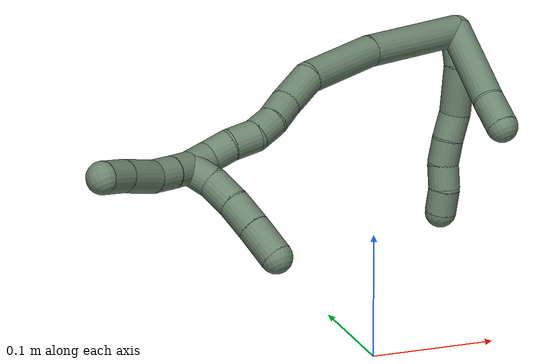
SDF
<sdf version="1.7">
 <world name="default">
  <model name="17">
   <static>0</static>
   <link name="17">
    <collision name="collision-cylinder-e_1_2_8">
     <pose>-0.002381 0.0047 -0.012234 -2.77479 -0.179731 0.904438</pose>
     <geometry><cylinder><radius>0.0125</radius><length>0.026641</length></cylinder></geometry>
     <surface>
      <friction><ode><mu>1.16</mu><mu2>1.16</mu2><slip1>0</slip1><slip2>0</slip2></ode></friction>
      <contact><ode><kp>1e+06</kp><kd>1</kd><max_vel>0</max_vel><min_depth>0.001</min_depth></ode></contact>
     </surface>
    </collision>
    <visual name="visual-cylinder-e_1_2_8">
     <pose>-0.002381 0.0047 -0.012234 -2.77479 -0.179731 0.904438</pose>
     <geometry><cylinder><radius>0.0125</radius><length>0.026641</length></cylinder></geometry>
     <material><ambient>0.415686 0.509804 0.423529 1</ambient></material>
    </visual>
    <collision name="collision-cylinder-e_2_8_9">
     <pose>-0.010558 0.022148 -0.039494 -2.43804 -0.286075 0.747848</pose>
     <geometry><cylinder><radius>0.0125</radius><length>0.041078</length></cylinder></geometry>
     <surface>
      <friction><ode><mu>1.16</mu><mu2>1.16</mu2><slip1>0</slip1><slip2>0</slip2></ode></friction>
      <contact><ode><kp>1e+06</kp><kd>1</kd><max_vel>0</max_vel><min_depth>0.001</min_depth></ode></contact>
     </surface>
    </collision>
    <visual name="visual-cylinder-e_2_8_9">
     <pose>-0.010558 0.022148 -0.039494 -2.43804 -0.286075 0.747848</pose>
     <geometry><cylinder><radius>0.0125</radius><length>0.041078</length></cylinder></geometry>
     <material><ambient>0.415686 0.509804 0.423529 1</ambient></material>
    </visual>
    <collision name="collision-cylinder-e_3_9_10">
     <pose>-0.021898 0.039674 -0.06255 -2.60481 -0.535426 1.56814</pose>
     <geometry><cylinder><radius>0.0125</radius><length>0.021731</length></cylinder></geometry>
     <surface>
      <friction><ode><mu>1.16</mu><mu2>1.16</mu2><slip1>0</slip1><slip2>0</slip2></ode></friction>
      <contact><ode><kp>1e+06</kp><kd>1</kd><max_vel>0</max_vel><min_depth>0.001</min_depth></ode></contact>
     </surface>
    </collision>
    <visual name="visual-cylinder-e_3_9_10">
     <pose>-0.021898 0.039674 -0.06255 -2.60481 -0.535426 1.56814</pose>
     <geometry><cylinder><radius>0.0125</radius><length>0.021731</length></cylinder></geometry>
     <material><ambient>0.415686 0.509804 0.423529 1</ambient></material>
    </visual>
    <collision name="collision-cylinder-e_4_10_11">
     <pose>-0.031674 0.049809 -0.078199 -2.52883 -0.426531 1.20059</pose>
     <geometry><cylinder><radius>0.0125</radius><length>0.020458</length></cylinder></geometry>
     <surface>
      <friction><ode><mu>1.16</mu><mu2>1.16</mu2><slip1>0</slip1><slip2>0</slip2></ode></friction>
      <contact><ode><kp>1e+06</kp><kd>1</kd><max_vel>0</max_vel><min_depth>0.001</min_depth></ode></contact>
     </surface>
    </collision>
    <visual name="visual-cylinder-e_4_10_11">
     <pose>-0.031674 0.049809 -0.078199 -2.52883 -0.426531 1.20059</pose>
     <geometry><cylinder><radius>0.0125</radius><length>0.020458</length></cylinder></geometry>
     <material><ambient>0.415686 0.509804 0.423529 1</ambient></material>
    </visual>
    <collision name="collision-cylinder-e_5_11_12">
     <pose>-0.038116 0.05953 -0.094571 -2.67902 -0.222199 0.884785</pose>
     <geometry><cylinder><radius>0.0125</radius><length>0.020058</length></cylinder></geometry>
     <surface>
      <friction><ode><mu>1.16</mu><mu2>1.16</mu2><slip1>0</slip1><slip2>0</slip2></ode></friction>
      <contact><ode><kp>1e+06</kp><kd>1</kd><max_vel>0</max_vel><min_depth>0.001</min_depth></ode></contact>
     </surface>
    </collision>
    <visual name="visual-cylinder-e_5_11_12">
     <pose>-0.038116 0.05953 -0.094571 -2.67902 -0.222199 0.884785</pose>
     <geometry><cylinder><radius>0.0125</radius><length>0.020058</length></cylinder></geometry>
     <material><ambient>0.415686 0.509804 0.423529 1</ambient></material>
    </visual>
    <collision name="collision-cylinder-e_6_12_6">
     <pose>-0.043845 0.069803 -0.110609 -2.46012 -0.359025 0.946087</pose>
     <geometry><cylinder><radius>0.0125</radius><length>0.020034</length></cylinder></geometry>
     <surface>
      <friction><ode><mu>1.16</mu><mu2>1.16</mu2><slip1>0</slip1><slip2>0</slip2></ode></friction>
      <contact><ode><kp>1e+06</kp><kd>1</kd><max_vel>0</max_vel><min_depth>0.001</min_depth></ode></contact>
     </surface>
    </collision>
    <visual name="visual-cylinder-e_6_12_6">
     <pose>-0.043845 0.069803 -0.110609 -2.46012 -0.359025 0.946087</pose>
     <geometry><cylinder><radius>0.0125</radius><length>0.020034</length></cylinder></geometry>
     <material><ambient>0.415686 0.509804 0.423529 1</ambient></material>
    </visual>
    <collision name="collision-cylinder-e_1_2_13">
     <pose>-0.003373 -0.015231 -0.033907 2.7194 -0.090485 -0.41642</pose>
     <geometry><cylinder><radius>0.0125</radius><length>0.074646</length></cylinder></geometry>
     <surface>
      <friction><ode><mu>1.16</mu><mu2>1.16</mu2><slip1>0</slip1><slip2>0</slip2></ode></friction>
      <contact><ode><kp>1e+06</kp><kd>1</kd><max_vel>0</max_vel><min_depth>0.001</min_depth></ode></contact>
     </surface>
    </collision>
    <visual name="visual-cylinder-e_1_2_13">
     <pose>-0.003373 -0.015231 -0.033907 2.7194 -0.090485 -0.41642</pose>
     <geometry><cylinder><radius>0.0125</radius><length>0.074646</length></cylinder></geometry>
     <material><ambient>0.415686 0.509804 0.423529 1</ambient></material>
    </visual>
    <collision name="collision-cylinder-e_2_13_5">
     <pose>-0.006874 -0.034056 -0.079969 2.85415 -0.010157 -0.070154</pose>
     <geometry><cylinder><radius>0.0125</radius><length>0.025354</length></cylinder></geometry>
     <surface>
      <friction><ode><mu>1.16</mu><mu2>1.16</mu2><slip1>0</slip1><slip2>0</slip2></ode></friction>
      <contact><ode><kp>1e+06</kp><kd>1</kd><max_vel>0</max_vel><min_depth>0.001</min_depth></ode></contact>
     </surface>
    </collision>
    <visual name="visual-cylinder-e_2_13_5">
     <pose>-0.006874 -0.034056 -0.079969 2.85415 -0.010157 -0.070154</pose>
     <geometry><cylinder><radius>0.0125</radius><length>0.025354</length></cylinder></geometry>
     <material><ambient>0.415686 0.509804 0.423529 1</ambient></material>
    </visual>
    <collision name="collision-cylinder-e_1_2_14">
     <pose>-0.041437 -0.019751 -0.000577 1.59999 -1.12583 -1.15235</pose>
     <geometry><cylinder><radius>0.0125</radius><length>0.091815</length></cylinder></geometry>
     <surface>
      <friction><ode><mu>1.16</mu><mu2>1.16</mu2><slip1>0</slip1><slip2>0</slip2></ode></friction>
      <contact><ode><kp>1e+06</kp><kd>1</kd><max_vel>0</max_vel><min_depth>0.001</min_depth></ode></contact>
     </surface>
    </collision>
    <visual name="visual-cylinder-e_1_2_14">
     <pose>-0.041437 -0.019751 -0.000577 1.59999 -1.12583 -1.15235</pose>
     <geometry><cylinder><radius>0.0125</radius><length>0.091815</length></cylinder></geometry>
     <material><ambient>0.415686 0.509804 0.423529 1</ambient></material>
    </visual>
    <collision name="collision-cylinder-e_2_14_15">
     <pose>-0.113437 -0.055355 -0.006557 1.8993 -1.06949 -1.38276</pose>
     <geometry><cylinder><radius>0.0125</radius><length>0.069701</length></cylinder></geometry>
     <surface>
      <friction><ode><mu>1.16</mu><mu2>1.16</mu2><slip1>0</slip1><slip2>0</slip2></ode></friction>
      <contact><ode><kp>1e+06</kp><kd>1</kd><max_vel>0</max_vel><min_depth>0.001</min_depth></ode></contact>
     </surface>
    </collision>
    <visual name="visual-cylinder-e_2_14_15">
     <pose>-0.113437 -0.055355 -0.006557 1.8993 -1.06949 -1.38276</pose>
     <geometry><cylinder><radius>0.0125</radius><length>0.069701</length></cylinder></geometry>
     <material><ambient>0.415686 0.509804 0.423529 1</ambient></material>
    </visual>
    <collision name="collision-cylinder-e_3_15_16">
     <pose>-0.157688 -0.076748 -0.019823 2.52773 -0.958307 -2.04603</pose>
     <geometry><cylinder><radius>0.0125</radius><length>0.033461</length></cylinder></geometry>
     <surface>
      <friction><ode><mu>1.16</mu><mu2>1.16</mu2><slip1>0</slip1><slip2>0</slip2></ode></friction>
      <contact><ode><kp>1e+06</kp><kd>1</kd><max_vel>0</max_vel><min_depth>0.001</min_depth></ode></contact>
     </surface>
    </collision>
    <visual name="visual-cylinder-e_3_15_16">
     <pose>-0.157688 -0.076748 -0.019823 2.52773 -0.958307 -2.04603</pose>
     <geometry><cylinder><radius>0.0125</radius><length>0.033461</length></cylinder></geometry>
     <material><ambient>0.415686 0.509804 0.423529 1</ambient></material>
    </visual>
    <collision name="collision-cylinder-e_4_16_17">
     <pose>-0.179788 -0.086709 -0.033368 2.48049 -0.862822 -1.86046</pose>
     <geometry><cylinder><radius>0.0125</radius><length>0.022142</length></cylinder></geometry>
     <surface>
      <friction><ode><mu>1.16</mu><mu2>1.16</mu2><slip1>0</slip1><slip2>0</slip2></ode></friction>
      <contact><ode><kp>1e+06</kp><kd>1</kd><max_vel>0</max_vel><min_depth>0.001</min_depth></ode></contact>
     </surface>
    </collision>
    <visual name="visual-cylinder-e_4_16_17">
     <pose>-0.179788 -0.086709 -0.033368 2.48049 -0.862822 -1.86046</pose>
     <geometry><cylinder><radius>0.0125</radius><length>0.022142</length></cylinder></geometry>
     <material><ambient>0.415686 0.509804 0.423529 1</ambient></material>
    </visual>
    <collision name="collision-cylinder-e_5_17_18">
     <pose>-0.197259 -0.094313 -0.042679 2.42139 -1.08126 -2.02119</pose>
     <geometry><cylinder><radius>0.0125</radius><length>0.020533</length></cylinder></geometry>
     <surface>
      <friction><ode><mu>1.16</mu><mu2>1.16</mu2><slip1>0</slip1><slip2>0</slip2></ode></friction>
      <contact><ode><kp>1e+06</kp><kd>1</kd><max_vel>0</max_vel><min_depth>0.001</min_depth></ode></contact>
     </surface>
    </collision>
    <visual name="visual-cylinder-e_5_17_18">
     <pose>-0.197259 -0.094313 -0.042679 2.42139 -1.08126 -2.02119</pose>
     <geometry><cylinder><radius>0.0125</radius><length>0.020533</length></cylinder></geometry>
     <material><ambient>0.415686 0.509804 0.423529 1</ambient></material>
    </visual>
    <collision name="collision-cylinder-e_6_18_19">
     <pose>-0.217161 -0.099928 -0.046991 1.84462 -1.34197 -1.61723</pose>
     <geometry><cylinder><radius>0.0125</radius><length>0.022264</length></cylinder></geometry>
     <surface>
      <friction><ode><mu>1.16</mu><mu2>1.16</mu2><slip1>0</slip1><slip2>0</slip2></ode></friction>
      <contact><ode><kp>1e+06</kp><kd>1</kd><max_vel>0</max_vel><min_depth>0.001</min_depth></ode></contact>
     </surface>
    </collision>
    <visual name="visual-cylinder-e_6_18_19">
     <pose>-0.217161 -0.099928 -0.046991 1.84462 -1.34197 -1.61723</pose>
     <geometry><cylinder><radius>0.0125</radius><length>0.022264</length></cylinder></geometry>
     <material><ambient>0.415686 0.509804 0.423529 1</ambient></material>
    </visual>
    <collision name="collision-cylinder-e_7_19_20">
     <pose>-0.237838 -0.103094 -0.049484 2.75618 -1.37463 -2.67482</pose>
     <geometry><cylinder><radius>0.0125</radius><length>0.020055</length></cylinder></geometry>
     <surface>
      <friction><ode><mu>1.16</mu><mu2>1.16</mu2><slip1>0</slip1><slip2>0</slip2></ode></friction>
      <contact><ode><kp>1e+06</kp><kd>1</kd><max_vel>0</max_vel><min_depth>0.001</min_depth></ode></contact>
     </surface>
    </collision>
    <visual name="visual-cylinder-e_7_19_20">
     <pose>-0.237838 -0.103094 -0.049484 2.75618 -1.37463 -2.67482</pose>
     <geometry><cylinder><radius>0.0125</radius><length>0.020055</length></cylinder></geometry>
     <material><ambient>0.415686 0.509804 0.423529 1</ambient></material>
    </visual>
    <collision name="collision-cylinder-e_8_20_1">
     <pose>-0.25659 -0.107858 -0.053428 2.05771 -1.09824 -1.58698</pose>
     <geometry><cylinder><radius>0.0125</radius><length>0.02003</length></cylinder></geometry>
     <surface>
      <friction><ode><mu>1.16</mu><mu2>1.16</mu2><slip1>0</slip1><slip2>0</slip2></ode></friction>
      <contact><ode><kp>1e+06</kp><kd>1</kd><max_vel>0</max_vel><min_depth>0.001</min_depth></ode></contact>
     </surface>
    </collision>
    <visual name="visual-cylinder-e_8_20_1">
     <pose>-0.25659 -0.107858 -0.053428 2.05771 -1.09824 -1.58698</pose>
     <geometry><cylinder><radius>0.0125</radius><length>0.02003</length></cylinder></geometry>
     <material><ambient>0.415686 0.509804 0.423529 1</ambient></material>
    </visual>
    <collision name="collision-cylinder-e_1_1_21">
     <pose>-0.260009 -0.115067 -0.064615 2.8037 0.520339 2.00188</pose>
     <geometry><cylinder><radius>0.0125</radius><length>0.02212</length></cylinder></geometry>
     <surface>
      <friction><ode><mu>1.16</mu><mu2>1.16</mu2><slip1>0</slip1><slip2>0</slip2></ode></friction>
      <contact><ode><kp>1e+06</kp><kd>1</kd><max_vel>0</max_vel><min_depth>0.001</min_depth></ode></contact>
     </surface>
    </collision>
    <visual name="visual-cylinder-e_1_1_21">
     <pose>-0.260009 -0.115067 -0.064615 2.8037 0.520339 2.00188</pose>
     <geometry><cylinder><radius>0.0125</radius><length>0.02212</length></cylinder></geometry>
     <material><ambient>0.415686 0.509804 0.423529 1</ambient></material>
    </visual>
    <collision name="collision-cylinder-e_2_21_22">
     <pose>-0.251006 -0.122103 -0.084558 2.80143 0.294545 1.42488</pose>
     <geometry><cylinder><radius>0.0125</radius><length>0.024144</length></cylinder></geometry>
     <surface>
      <friction><ode><mu>1.16</mu><mu2>1.16</mu2><slip1>0</slip1><slip2>0</slip2></ode></friction>
      <contact><ode><kp>1e+06</kp><kd>1</kd><max_vel>0</max_vel><min_depth>0.001</min_depth></ode></contact>
     </surface>
    </collision>
    <visual name="visual-cylinder-e_2_21_22">
     <pose>-0.251006 -0.122103 -0.084558 2.80143 0.294545 1.42488</pose>
     <geometry><cylinder><radius>0.0125</radius><length>0.024144</length></cylinder></geometry>
     <material><ambient>0.415686 0.509804 0.423529 1</ambient></material>
    </visual>
    <collision name="collision-cylinder-e_3_22_23">
     <pose>-0.244721 -0.129006 -0.107078 2.88516 0.227279 1.44923</pose>
     <geometry><cylinder><radius>0.0125</radius><length>0.024679</length></cylinder></geometry>
     <surface>
      <friction><ode><mu>1.16</mu><mu2>1.16</mu2><slip1>0</slip1><slip2>0</slip2></ode></friction>
      <contact><ode><kp>1e+06</kp><kd>1</kd><max_vel>0</max_vel><min_depth>0.001</min_depth></ode></contact>
     </surface>
    </collision>
    <visual name="visual-cylinder-e_3_22_23">
     <pose>-0.244721 -0.129006 -0.107078 2.88516 0.227279 1.44923</pose>
     <geometry><cylinder><radius>0.0125</radius><length>0.024679</length></cylinder></geometry>
     <material><ambient>0.415686 0.509804 0.423529 1</ambient></material>
    </visual>
    <collision name="collision-cylinder-e_4_23_4">
     <pose>-0.238965 -0.135146 -0.132588 2.92254 0.206266 1.51024</pose>
     <geometry><cylinder><radius>0.0125</radius><length>0.029057</length></cylinder></geometry>
     <surface>
      <friction><ode><mu>1.16</mu><mu2>1.16</mu2><slip1>0</slip1><slip2>0</slip2></ode></friction>
      <contact><ode><kp>1e+06</kp><kd>1</kd><max_vel>0</max_vel><min_depth>0.001</min_depth></ode></contact>
     </surface>
    </collision>
    <visual name="visual-cylinder-e_4_23_4">
     <pose>-0.238965 -0.135146 -0.132588 2.92254 0.206266 1.51024</pose>
     <geometry><cylinder><radius>0.0125</radius><length>0.029057</length></cylinder></geometry>
     <material><ambient>0.415686 0.509804 0.423529 1</ambient></material>
    </visual>
    <collision name="collision-cylinder-e_1_1_24">
     <pose>-0.273715 -0.11776 -0.056219 1.68222 -0.946669 -1.04016</pose>
     <geometry><cylinder><radius>0.0125</radius><length>0.020227</length></cylinder></geometry>
     <surface>
      <friction><ode><mu>1.16</mu><mu2>1.16</mu2><slip1>0</slip1><slip2>0</slip2></ode></friction>
      <contact><ode><kp>1e+06</kp><kd>1</kd><max_vel>0</max_vel><min_depth>0.001</min_depth></ode></contact>
     </surface>
    </collision>
    <visual name="visual-cylinder-e_1_1_24">
     <pose>-0.273715 -0.11776 -0.056219 1.68222 -0.946669 -1.04016</pose>
     <geometry><cylinder><radius>0.0125</radius><length>0.020227</length></cylinder></geometry>
     <material><ambient>0.415686 0.509804 0.423529 1</ambient></material>
    </visual>
    <collision name="collision-cylinder-e_2_24_25">
     <pose>-0.290496 -0.129225 -0.057201 1.62882 -0.992217 -1.04158</pose>
     <geometry><cylinder><radius>0.0125</radius><length>0.020484</length></cylinder></geometry>
     <surface>
      <friction><ode><mu>1.16</mu><mu2>1.16</mu2><slip1>0</slip1><slip2>0</slip2></ode></friction>
      <contact><ode><kp>1e+06</kp><kd>1</kd><max_vel>0</max_vel><min_depth>0.001</min_depth></ode></contact>
     </surface>
    </collision>
    <visual name="visual-cylinder-e_2_24_25">
     <pose>-0.290496 -0.129225 -0.057201 1.62882 -0.992217 -1.04158</pose>
     <geometry><cylinder><radius>0.0125</radius><length>0.020484</length></cylinder></geometry>
     <material><ambient>0.415686 0.509804 0.423529 1</ambient></material>
    </visual>
    <collision name="collision-cylinder-e_3_25_26">
     <pose>-0.311405 -0.146682 -0.056168 1.45687 -0.801453 -0.722692</pose>
     <geometry><cylinder><radius>0.0125</radius><length>0.034338</length></cylinder></geometry>
     <surface>
      <friction><ode><mu>1.16</mu><mu2>1.16</mu2><slip1>0</slip1><slip2>0</slip2></ode></friction>
      <contact><ode><kp>1e+06</kp><kd>1</kd><max_vel>0</max_vel><min_depth>0.001</min_depth></ode></contact>
     </surface>
    </collision>
    <visual name="visual-cylinder-e_3_25_26">
     <pose>-0.311405 -0.146682 -0.056168 1.45687 -0.801453 -0.722692</pose>
     <geometry><cylinder><radius>0.0125</radius><length>0.034338</length></cylinder></geometry>
     <material><ambient>0.415686 0.509804 0.423529 1</ambient></material>
    </visual>
    <collision name="collision-cylinder-e_4_26_3">
     <pose>-0.33286 -0.167059 -0.054725 1.56085 -0.820012 -0.812762</pose>
     <geometry><cylinder><radius>0.0125</radius><length>0.024951</length></cylinder></geometry>
     <surface>
      <friction><ode><mu>1.16</mu><mu2>1.16</mu2><slip1>0</slip1><slip2>0</slip2></ode></friction>
      <contact><ode><kp>1e+06</kp><kd>1</kd><max_vel>0</max_vel><min_depth>0.001</min_depth></ode></contact>
     </surface>
    </collision>
    <visual name="visual-cylinder-e_4_26_3">
     <pose>-0.33286 -0.167059 -0.054725 1.56085 -0.820012 -0.812762</pose>
     <geometry><cylinder><radius>0.0125</radius><length>0.024951</length></cylinder></geometry>
     <material><ambient>0.415686 0.509804 0.423529 1</ambient></material>
    </visual>
    <collision name="collision-sphere-3">
     <pose>-0.341982 -0.17557 -0.05464 0 -0 0</pose>
     <geometry><sphere><radius>0.0125</radius></sphere></geometry>
     <surface>
      <friction><ode><mu>1.16</mu><mu2>1.16</mu2><slip1>0</slip1><slip2>0</slip2></ode></friction>
      <contact><ode><kp>1e+06</kp><kd>1</kd><max_vel>0</max_vel><min_depth>0.001</min_depth></ode></contact>
     </surface>
    </collision>
    <visual name="visual-sphere-3">
     <pose>-0.341982 -0.17557 -0.05464 0 -0 0</pose>
     <geometry><sphere><radius>0.0125</radius></sphere></geometry>
     <material><ambient>0.415686 0.509804 0.423529 1</ambient></material>
    </visual>
    <collision name="collision-sphere-26">
     <pose>-0.323739 -0.158549 -0.05481 0 -0 0</pose>
     <geometry><sphere><radius>0.0125</radius></sphere></geometry>
     <surface>
      <friction><ode><mu>1.16</mu><mu2>1.16</mu2><slip1>0</slip1><slip2>0</slip2></ode></friction>
      <contact><ode><kp>1e+06</kp><kd>1</kd><max_vel>0</max_vel><min_depth>0.001</min_depth></ode></contact>
     </surface>
    </collision>
    <visual name="visual-sphere-26">
     <pose>-0.323739 -0.158549 -0.05481 0 -0 0</pose>
     <geometry><sphere><radius>0.0125</radius></sphere></geometry>
     <material><ambient>0.415686 0.509804 0.423529 1</ambient></material>
    </visual>
    <collision name="collision-sphere-25">
     <pose>-0.299072 -0.134816 -0.057525 0 -0 0</pose>
     <geometry><sphere><radius>0.0125</radius></sphere></geometry>
     <surface>
      <friction><ode><mu>1.16</mu><mu2>1.16</mu2><slip1>0</slip1><slip2>0</slip2></ode></friction>
      <contact><ode><kp>1e+06</kp><kd>1</kd><max_vel>0</max_vel><min_depth>0.001</min_depth></ode></contact>
     </surface>
    </collision>
    <visual name="visual-sphere-25">
     <pose>-0.299072 -0.134816 -0.057525 0 -0 0</pose>
     <geometry><sphere><radius>0.0125</radius></sphere></geometry>
     <material><ambient>0.415686 0.509804 0.423529 1</ambient></material>
    </visual>
    <collision name="collision-sphere-24">
     <pose>-0.281921 -0.123633 -0.056876 0 -0 0</pose>
     <geometry><sphere><radius>0.0125</radius></sphere></geometry>
     <surface>
      <friction><ode><mu>1.16</mu><mu2>1.16</mu2><slip1>0</slip1><slip2>0</slip2></ode></friction>
      <contact><ode><kp>1e+06</kp><kd>1</kd><max_vel>0</max_vel><min_depth>0.001</min_depth></ode></contact>
     </surface>
    </collision>
    <visual name="visual-sphere-24">
     <pose>-0.281921 -0.123633 -0.056876 0 -0 0</pose>
     <geometry><sphere><radius>0.0125</radius></sphere></geometry>
     <material><ambient>0.415686 0.509804 0.423529 1</ambient></material>
    </visual>
    <collision name="collision-sphere-4">
     <pose>-0.235989 -0.138236 -0.146468 0 -0 0</pose>
     <geometry><sphere><radius>0.0125</radius></sphere></geometry>
     <surface>
      <friction><ode><mu>1.16</mu><mu2>1.16</mu2><slip1>0</slip1><slip2>0</slip2></ode></friction>
      <contact><ode><kp>1e+06</kp><kd>1</kd><max_vel>0</max_vel><min_depth>0.001</min_depth></ode></contact>
     </surface>
    </collision>
    <visual name="visual-sphere-4">
     <pose>-0.235989 -0.138236 -0.146468 0 -0 0</pose>
     <geometry><sphere><radius>0.0125</radius></sphere></geometry>
     <material><ambient>0.415686 0.509804 0.423529 1</ambient></material>
    </visual>
    <collision name="collision-sphere-23">
     <pose>-0.24194 -0.132056 -0.118707 0 -0 0</pose>
     <geometry><sphere><radius>0.0125</radius></sphere></geometry>
     <surface>
      <friction><ode><mu>1.16</mu><mu2>1.16</mu2><slip1>0</slip1><slip2>0</slip2></ode></friction>
      <contact><ode><kp>1e+06</kp><kd>1</kd><max_vel>0</max_vel><min_depth>0.001</min_depth></ode></contact>
     </surface>
    </collision>
    <visual name="visual-sphere-23">
     <pose>-0.24194 -0.132056 -0.118707 0 -0 0</pose>
     <geometry><sphere><radius>0.0125</radius></sphere></geometry>
     <material><ambient>0.415686 0.509804 0.423529 1</ambient></material>
    </visual>
    <collision name="collision-sphere-22">
     <pose>-0.247501 -0.125957 -0.095449 0 -0 0</pose>
     <geometry><sphere><radius>0.0125</radius></sphere></geometry>
     <surface>
      <friction><ode><mu>1.16</mu><mu2>1.16</mu2><slip1>0</slip1><slip2>0</slip2></ode></friction>
      <contact><ode><kp>1e+06</kp><kd>1</kd><max_vel>0</max_vel><min_depth>0.001</min_depth></ode></contact>
     </surface>
    </collision>
    <visual name="visual-sphere-22">
     <pose>-0.247501 -0.125957 -0.095449 0 -0 0</pose>
     <geometry><sphere><radius>0.0125</radius></sphere></geometry>
     <material><ambient>0.415686 0.509804 0.423529 1</ambient></material>
    </visual>
    <collision name="collision-sphere-21">
     <pose>-0.25451 -0.118249 -0.073668 0 -0 0</pose>
     <geometry><sphere><radius>0.0125</radius></sphere></geometry>
     <surface>
      <friction><ode><mu>1.16</mu><mu2>1.16</mu2><slip1>0</slip1><slip2>0</slip2></ode></friction>
      <contact><ode><kp>1e+06</kp><kd>1</kd><max_vel>0</max_vel><min_depth>0.001</min_depth></ode></contact>
     </surface>
    </collision>
    <visual name="visual-sphere-21">
     <pose>-0.25451 -0.118249 -0.073668 0 -0 0</pose>
     <geometry><sphere><radius>0.0125</radius></sphere></geometry>
     <material><ambient>0.415686 0.509804 0.423529 1</ambient></material>
    </visual>
    <collision name="collision-sphere-1">
     <pose>-0.265508 -0.111886 -0.055561 0 -0 0</pose>
     <geometry><sphere><radius>0.0125</radius></sphere></geometry>
     <surface>
      <friction><ode><mu>1.16</mu><mu2>1.16</mu2><slip1>0</slip1><slip2>0</slip2></ode></friction>
      <contact><ode><kp>1e+06</kp><kd>1</kd><max_vel>0</max_vel><min_depth>0.001</min_depth></ode></contact>
     </surface>
    </collision>
    <visual name="visual-sphere-1">
     <pose>-0.265508 -0.111886 -0.055561 0 -0 0</pose>
     <geometry><sphere><radius>0.0125</radius></sphere></geometry>
     <material><ambient>0.415686 0.509804 0.423529 1</ambient></material>
    </visual>
    <collision name="collision-sphere-12">
     <pose>-0.040326 0.063895 -0.103325 0 -0 0</pose>
     <geometry><sphere><radius>0.0125</radius></sphere></geometry>
     <surface>
      <friction><ode><mu>1.16</mu><mu2>1.16</mu2><slip1>0</slip1><slip2>0</slip2></ode></friction>
      <contact><ode><kp>1e+06</kp><kd>1</kd><max_vel>0</max_vel><min_depth>0.001</min_depth></ode></contact>
     </surface>
    </collision>
    <visual name="visual-sphere-12">
     <pose>-0.040326 0.063895 -0.103325 0 -0 0</pose>
     <geometry><sphere><radius>0.0125</radius></sphere></geometry>
     <material><ambient>0.415686 0.509804 0.423529 1</ambient></material>
    </visual>
    <collision name="collision-sphere-11">
     <pose>-0.035905 0.055164 -0.085817 0 -0 0</pose>
     <geometry><sphere><radius>0.0125</radius></sphere></geometry>
     <surface>
      <friction><ode><mu>1.16</mu><mu2>1.16</mu2><slip1>0</slip1><slip2>0</slip2></ode></friction>
      <contact><ode><kp>1e+06</kp><kd>1</kd><max_vel>0</max_vel><min_depth>0.001</min_depth></ode></contact>
     </surface>
    </collision>
    <visual name="visual-sphere-11">
     <pose>-0.035905 0.055164 -0.085817 0 -0 0</pose>
     <geometry><sphere><radius>0.0125</radius></sphere></geometry>
     <material><ambient>0.415686 0.509804 0.423529 1</ambient></material>
    </visual>
    <collision name="collision-sphere-10">
     <pose>-0.027442 0.044453 -0.070581 0 -0 0</pose>
     <geometry><sphere><radius>0.0125</radius></sphere></geometry>
     <surface>
      <friction><ode><mu>1.16</mu><mu2>1.16</mu2><slip1>0</slip1><slip2>0</slip2></ode></friction>
      <contact><ode><kp>1e+06</kp><kd>1</kd><max_vel>0</max_vel><min_depth>0.001</min_depth></ode></contact>
     </surface>
    </collision>
    <visual name="visual-sphere-10">
     <pose>-0.027442 0.044453 -0.070581 0 -0 0</pose>
     <geometry><sphere><radius>0.0125</radius></sphere></geometry>
     <material><ambient>0.415686 0.509804 0.423529 1</ambient></material>
    </visual>
    <collision name="collision-sphere-9">
     <pose>-0.016354 0.034895 -0.054519 0 -0 0</pose>
     <geometry><sphere><radius>0.0125</radius></sphere></geometry>
     <surface>
      <friction><ode><mu>1.16</mu><mu2>1.16</mu2><slip1>0</slip1><slip2>0</slip2></ode></friction>
      <contact><ode><kp>1e+06</kp><kd>1</kd><max_vel>0</max_vel><min_depth>0.001</min_depth></ode></contact>
     </surface>
    </collision>
    <visual name="visual-sphere-9">
     <pose>-0.016354 0.034895 -0.054519 0 -0 0</pose>
     <geometry><sphere><radius>0.0125</radius></sphere></geometry>
     <material><ambient>0.415686 0.509804 0.423529 1</ambient></material>
    </visual>
    <collision name="collision-sphere-2">
     <geometry><sphere><radius>0.0125</radius></sphere></geometry>
     <surface>
      <friction><ode><mu>1.16</mu><mu2>1.16</mu2><slip1>0</slip1><slip2>0</slip2></ode></friction>
      <contact><ode><kp>1e+06</kp><kd>1</kd><max_vel>0</max_vel><min_depth>0.001</min_depth></ode></contact>
     </surface>
    </collision>
    <visual name="visual-sphere-2">
     <geometry><sphere><radius>0.0125</radius></sphere></geometry>
     <material><ambient>0.415686 0.509804 0.423529 1</ambient></material>
    </visual>
    <collision name="collision-sphere-19">
     <pose>-0.228003 -0.102359 -0.047673 0 -0 0</pose>
     <geometry><sphere><radius>0.0125</radius></sphere></geometry>
     <surface>
      <friction><ode><mu>1.16</mu><mu2>1.16</mu2><slip1>0</slip1><slip2>0</slip2></ode></friction>
      <contact><ode><kp>1e+06</kp><kd>1</kd><max_vel>0</max_vel><min_depth>0.001</min_depth></ode></contact>
     </surface>
    </collision>
    <visual name="visual-sphere-19">
     <pose>-0.228003 -0.102359 -0.047673 0 -0 0</pose>
     <geometry><sphere><radius>0.0125</radius></sphere></geometry>
     <material><ambient>0.415686 0.509804 0.423529 1</ambient></material>
    </visual>
    <collision name="collision-sphere-8">
     <pose>-0.004762 0.0094 -0.024468 0 -0 0</pose>
     <geometry><sphere><radius>0.0125</radius></sphere></geometry>
     <surface>
      <friction><ode><mu>1.16</mu><mu2>1.16</mu2><slip1>0</slip1><slip2>0</slip2></ode></friction>
      <contact><ode><kp>1e+06</kp><kd>1</kd><max_vel>0</max_vel><min_depth>0.001</min_depth></ode></contact>
     </surface>
    </collision>
    <visual name="visual-sphere-8">
     <pose>-0.004762 0.0094 -0.024468 0 -0 0</pose>
     <geometry><sphere><radius>0.0125</radius></sphere></geometry>
     <material><ambient>0.415686 0.509804 0.423529 1</ambient></material>
    </visual>
    <collision name="collision-sphere-6">
     <pose>-0.047365 0.075711 -0.117893 0 -0 0</pose>
     <geometry><sphere><radius>0.0125</radius></sphere></geometry>
     <surface>
      <friction><ode><mu>1.16</mu><mu2>1.16</mu2><slip1>0</slip1><slip2>0</slip2></ode></friction>
      <contact><ode><kp>1e+06</kp><kd>1</kd><max_vel>0</max_vel><min_depth>0.001</min_depth></ode></contact>
     </surface>
    </collision>
    <visual name="visual-sphere-6">
     <pose>-0.047365 0.075711 -0.117893 0 -0 0</pose>
     <geometry><sphere><radius>0.0125</radius></sphere></geometry>
     <material><ambient>0.415686 0.509804 0.423529 1</ambient></material>
    </visual>
    <collision name="collision-sphere-13">
     <pose>-0.006745 -0.030462 -0.067813 0 -0 0</pose>
     <geometry><sphere><radius>0.0125</radius></sphere></geometry>
     <surface>
      <friction><ode><mu>1.16</mu><mu2>1.16</mu2><slip1>0</slip1><slip2>0</slip2></ode></friction>
      <contact><ode><kp>1e+06</kp><kd>1</kd><max_vel>0</max_vel><min_depth>0.001</min_depth></ode></contact>
     </surface>
    </collision>
    <visual name="visual-sphere-13">
     <pose>-0.006745 -0.030462 -0.067813 0 -0 0</pose>
     <geometry><sphere><radius>0.0125</radius></sphere></geometry>
     <material><ambient>0.415686 0.509804 0.423529 1</ambient></material>
    </visual>
    <collision name="collision-sphere-5">
     <pose>-0.007003 -0.03765 -0.092125 0 -0 0</pose>
     <geometry><sphere><radius>0.0125</radius></sphere></geometry>
     <surface>
      <friction><ode><mu>1.16</mu><mu2>1.16</mu2><slip1>0</slip1><slip2>0</slip2></ode></friction>
      <contact><ode><kp>1e+06</kp><kd>1</kd><max_vel>0</max_vel><min_depth>0.001</min_depth></ode></contact>
     </surface>
    </collision>
    <visual name="visual-sphere-5">
     <pose>-0.007003 -0.03765 -0.092125 0 -0 0</pose>
     <geometry><sphere><radius>0.0125</radius></sphere></geometry>
     <material><ambient>0.415686 0.509804 0.423529 1</ambient></material>
    </visual>
    <collision name="collision-sphere-14">
     <pose>-0.082875 -0.039503 -0.001154 0 -0 0</pose>
     <geometry><sphere><radius>0.0125</radius></sphere></geometry>
     <surface>
      <friction><ode><mu>1.16</mu><mu2>1.16</mu2><slip1>0</slip1><slip2>0</slip2></ode></friction>
      <contact><ode><kp>1e+06</kp><kd>1</kd><max_vel>0</max_vel><min_depth>0.001</min_depth></ode></contact>
     </surface>
    </collision>
    <visual name="visual-sphere-14">
     <pose>-0.082875 -0.039503 -0.001154 0 -0 0</pose>
     <geometry><sphere><radius>0.0125</radius></sphere></geometry>
     <material><ambient>0.415686 0.509804 0.423529 1</ambient></material>
    </visual>
    <collision name="collision-sphere-15">
     <pose>-0.143999 -0.071208 -0.01196 0 -0 0</pose>
     <geometry><sphere><radius>0.0125</radius></sphere></geometry>
     <surface>
      <friction><ode><mu>1.16</mu><mu2>1.16</mu2><slip1>0</slip1><slip2>0</slip2></ode></friction>
      <contact><ode><kp>1e+06</kp><kd>1</kd><max_vel>0</max_vel><min_depth>0.001</min_depth></ode></contact>
     </surface>
    </collision>
    <visual name="visual-sphere-15">
     <pose>-0.143999 -0.071208 -0.01196 0 -0 0</pose>
     <geometry><sphere><radius>0.0125</radius></sphere></geometry>
     <material><ambient>0.415686 0.509804 0.423529 1</ambient></material>
    </visual>
    <collision name="collision-sphere-16">
     <pose>-0.171377 -0.082289 -0.027685 0 -0 0</pose>
     <geometry><sphere><radius>0.0125</radius></sphere></geometry>
     <surface>
      <friction><ode><mu>1.16</mu><mu2>1.16</mu2><slip1>0</slip1><slip2>0</slip2></ode></friction>
      <contact><ode><kp>1e+06</kp><kd>1</kd><max_vel>0</max_vel><min_depth>0.001</min_depth></ode></contact>
     </surface>
    </collision>
    <visual name="visual-sphere-16">
     <pose>-0.171377 -0.082289 -0.027685 0 -0 0</pose>
     <geometry><sphere><radius>0.0125</radius></sphere></geometry>
     <material><ambient>0.415686 0.509804 0.423529 1</ambient></material>
    </visual>
    <collision name="collision-sphere-17">
     <pose>-0.188199 -0.09113 -0.039051 0 -0 0</pose>
     <geometry><sphere><radius>0.0125</radius></sphere></geometry>
     <surface>
      <friction><ode><mu>1.16</mu><mu2>1.16</mu2><slip1>0</slip1><slip2>0</slip2></ode></friction>
      <contact><ode><kp>1e+06</kp><kd>1</kd><max_vel>0</max_vel><min_depth>0.001</min_depth></ode></contact>
     </surface>
    </collision>
    <visual name="visual-sphere-17">
     <pose>-0.188199 -0.09113 -0.039051 0 -0 0</pose>
     <geometry><sphere><radius>0.0125</radius></sphere></geometry>
     <material><ambient>0.415686 0.509804 0.423529 1</ambient></material>
    </visual>
    <collision name="collision-sphere-18">
     <pose>-0.20632 -0.097497 -0.046308 0 -0 0</pose>
     <geometry><sphere><radius>0.0125</radius></sphere></geometry>
     <surface>
      <friction><ode><mu>1.16</mu><mu2>1.16</mu2><slip1>0</slip1><slip2>0</slip2></ode></friction>
      <contact><ode><kp>1e+06</kp><kd>1</kd><max_vel>0</max_vel><min_depth>0.001</min_depth></ode></contact>
     </surface>
    </collision>
    <visual name="visual-sphere-18">
     <pose>-0.20632 -0.097497 -0.046308 0 -0 0</pose>
     <geometry><sphere><radius>0.0125</radius></sphere></geometry>
     <material><ambient>0.415686 0.509804 0.423529 1</ambient></material>
    </visual>
    <collision name="collision-sphere-20">
     <pose>-0.247673 -0.103829 -0.051296 0 -0 0</pose>
     <geometry><sphere><radius>0.0125</radius></sphere></geometry>
     <surface>
      <friction><ode><mu>1.16</mu><mu2>1.16</mu2><slip1>0</slip1><slip2>0</slip2></ode></friction>
      <contact><ode><kp>1e+06</kp><kd>1</kd><max_vel>0</max_vel><min_depth>0.001</min_depth></ode></contact>
     </surface>
    </collision>
    <visual name="visual-sphere-20">
     <pose>-0.247673 -0.103829 -0.051296 0 -0 0</pose>
     <geometry><sphere><radius>0.0125</radius></sphere></geometry>
     <material><ambient>0.415686 0.509804 0.423529 1</ambient></material>
    </visual>
    <inertial>
     <pose>-0.131644 -0.055838 -0.046726 0 -0 0</pose>
     <mass>0.75</mass>
     <inertia><ixx>-1.2e-05</ixx><ixy>0</ixy><ixz>0</ixz><iyy>-2e-06</iyy><iyz>0</iyz><izz>0.000148</izz></inertia>
    </inertial>
   </link>
   <pose>0.097998 0.077427 0.233014 -0.60217 -0.237826 -0.007494</pose>
  </model>
 </world>
</sdf>
